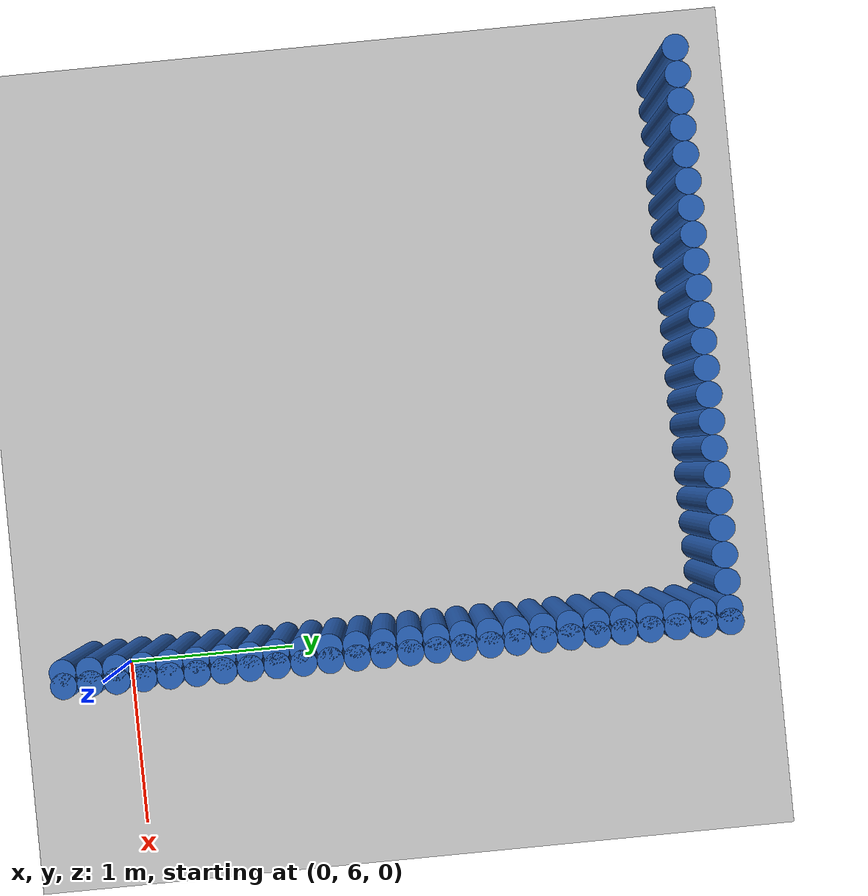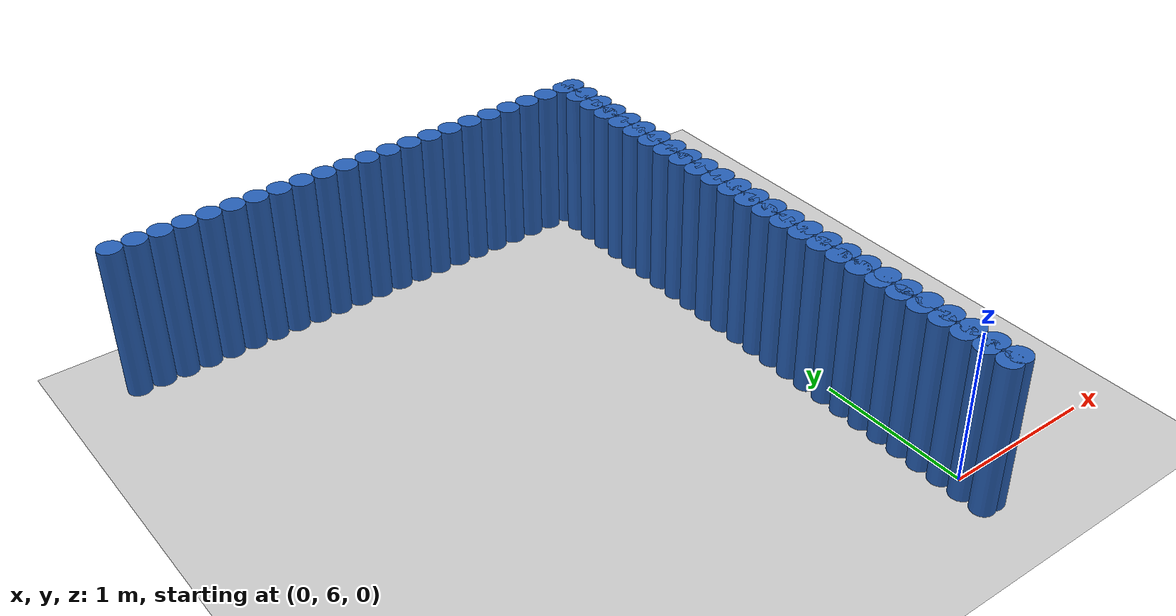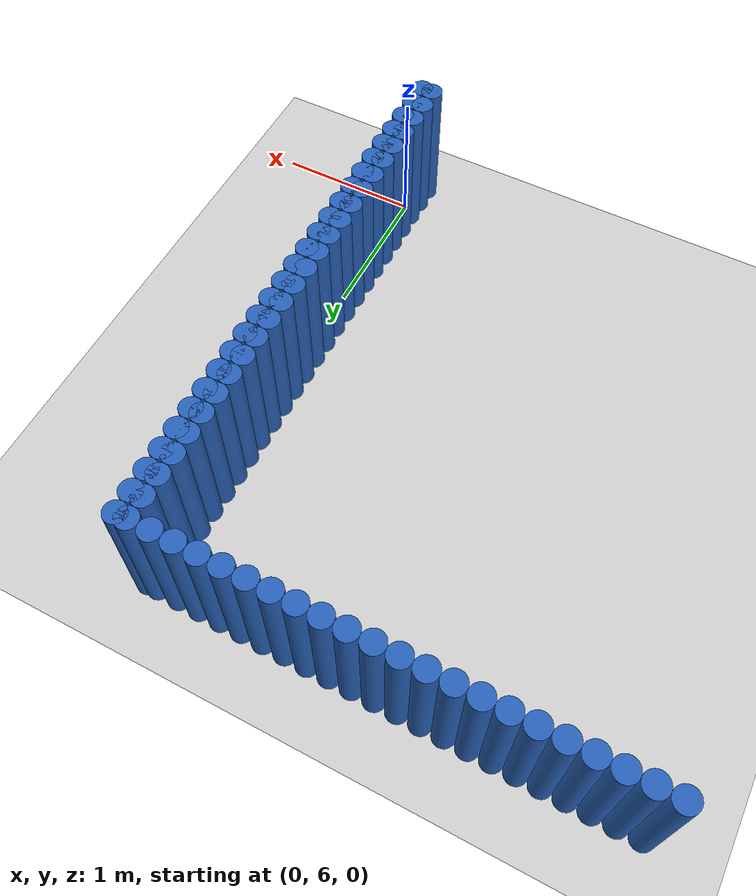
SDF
<sdf version="1.6">
 <world name="barn_world">
  <model name="ground_plane">
   <static>1</static>
   <link name="link">
    <collision name="collision">
     <geometry><plane><normal>0 0 1</normal><size>100 100</size></plane></geometry>
    </collision>
    <visual name="visual">
     <geometry><plane><normal>0 0 1</normal><size>100 100</size></plane></geometry>
     <material>
      <script><uri>file://media/materials/scripts/gazebo.material</uri><name>Gazebo/Grey</name></script>
     </material>
    </visual>
   </link>
  </model>
  <model name="unit_cylinder_179">
   <static>1</static>
   <pose>0.0000 5.7750 0.5 0 0 0</pose>
   <link name="link">
    <collision name="collision">
     <geometry><cylinder><radius>0.075</radius><length>1</length></cylinder></geometry>
    </collision>
    <visual name="visual">
     <geometry><cylinder><radius>0.075</radius><length>1</length></cylinder></geometry>
     <material><ambient>0.152 0.379 0.72 1</ambient><diffuse>0.152 0.379 0.72 1</diffuse></material>
    </visual>
   </link>
  </model>
  <model name="unit_cylinder_180">
   <static>1</static>
   <pose>0.0000 5.9250 0.5 0 0 0</pose>
   <link name="link">
    <collision name="collision">
     <geometry><cylinder><radius>0.075</radius><length>1</length></cylinder></geometry>
    </collision>
    <visual name="visual">
     <geometry><cylinder><radius>0.075</radius><length>1</length></cylinder></geometry>
     <material><ambient>0.152 0.379 0.72 1</ambient><diffuse>0.152 0.379 0.72 1</diffuse></material>
    </visual>
   </link>
  </model>
  <model name="unit_cylinder_181">
   <static>1</static>
   <pose>0.0000 6.0750 0.5 0 0 0</pose>
   <link name="link">
    <collision name="collision">
     <geometry><cylinder><radius>0.075</radius><length>1</length></cylinder></geometry>
    </collision>
    <visual name="visual">
     <geometry><cylinder><radius>0.075</radius><length>1</length></cylinder></geometry>
     <material><ambient>0.152 0.379 0.72 1</ambient><diffuse>0.152 0.379 0.72 1</diffuse></material>
    </visual>
   </link>
  </model>
  <model name="unit_cylinder_182">
   <static>1</static>
   <pose>0.0000 6.2250 0.5 0 0 0</pose>
   <link name="link">
    <collision name="collision">
     <geometry><cylinder><radius>0.075</radius><length>1</length></cylinder></geometry>
    </collision>
    <visual name="visual">
     <geometry><cylinder><radius>0.075</radius><length>1</length></cylinder></geometry>
     <material><ambient>0.152 0.379 0.72 1</ambient><diffuse>0.152 0.379 0.72 1</diffuse></material>
    </visual>
   </link>
  </model>
  <model name="unit_cylinder_183">
   <static>1</static>
   <pose>0.0000 6.3750 0.5 0 0 0</pose>
   <link name="link">
    <collision name="collision">
     <geometry><cylinder><radius>0.075</radius><length>1</length></cylinder></geometry>
    </collision>
    <visual name="visual">
     <geometry><cylinder><radius>0.075</radius><length>1</length></cylinder></geometry>
     <material><ambient>0.152 0.379 0.72 1</ambient><diffuse>0.152 0.379 0.72 1</diffuse></material>
    </visual>
   </link>
  </model>
  <model name="unit_cylinder_184">
   <static>1</static>
   <pose>0.0000 6.5250 0.5 0 0 0</pose>
   <link name="link">
    <collision name="collision">
     <geometry><cylinder><radius>0.075</radius><length>1</length></cylinder></geometry>
    </collision>
    <visual name="visual">
     <geometry><cylinder><radius>0.075</radius><length>1</length></cylinder></geometry>
     <material><ambient>0.152 0.379 0.72 1</ambient><diffuse>0.152 0.379 0.72 1</diffuse></material>
    </visual>
   </link>
  </model>
  <model name="unit_cylinder_185">
   <static>1</static>
   <pose>0.0000 6.6750 0.5 0 0 0</pose>
   <link name="link">
    <collision name="collision">
     <geometry><cylinder><radius>0.075</radius><length>1</length></cylinder></geometry>
    </collision>
    <visual name="visual">
     <geometry><cylinder><radius>0.075</radius><length>1</length></cylinder></geometry>
     <material><ambient>0.152 0.379 0.72 1</ambient><diffuse>0.152 0.379 0.72 1</diffuse></material>
    </visual>
   </link>
  </model>
  <model name="unit_cylinder_186">
   <static>1</static>
   <pose>0.0000 6.8250 0.5 0 0 0</pose>
   <link name="link">
    <collision name="collision">
     <geometry><cylinder><radius>0.075</radius><length>1</length></cylinder></geometry>
    </collision>
    <visual name="visual">
     <geometry><cylinder><radius>0.075</radius><length>1</length></cylinder></geometry>
     <material><ambient>0.152 0.379 0.72 1</ambient><diffuse>0.152 0.379 0.72 1</diffuse></material>
    </visual>
   </link>
  </model>
  <model name="unit_cylinder_187">
   <static>1</static>
   <pose>0.0000 6.9750 0.5 0 0 0</pose>
   <link name="link">
    <collision name="collision">
     <geometry><cylinder><radius>0.075</radius><length>1</length></cylinder></geometry>
    </collision>
    <visual name="visual">
     <geometry><cylinder><radius>0.075</radius><length>1</length></cylinder></geometry>
     <material><ambient>0.152 0.379 0.72 1</ambient><diffuse>0.152 0.379 0.72 1</diffuse></material>
    </visual>
   </link>
  </model>
  <model name="unit_cylinder_188">
   <static>1</static>
   <pose>0.0000 7.1250 0.5 0 0 0</pose>
   <link name="link">
    <collision name="collision">
     <geometry><cylinder><radius>0.075</radius><length>1</length></cylinder></geometry>
    </collision>
    <visual name="visual">
     <geometry><cylinder><radius>0.075</radius><length>1</length></cylinder></geometry>
     <material><ambient>0.152 0.379 0.72 1</ambient><diffuse>0.152 0.379 0.72 1</diffuse></material>
    </visual>
   </link>
  </model>
  <model name="unit_cylinder_189">
   <static>1</static>
   <pose>0.0000 7.2750 0.5 0 0 0</pose>
   <link name="link">
    <collision name="collision">
     <geometry><cylinder><radius>0.075</radius><length>1</length></cylinder></geometry>
    </collision>
    <visual name="visual">
     <geometry><cylinder><radius>0.075</radius><length>1</length></cylinder></geometry>
     <material><ambient>0.152 0.379 0.72 1</ambient><diffuse>0.152 0.379 0.72 1</diffuse></material>
    </visual>
   </link>
  </model>
  <model name="unit_cylinder_190">
   <static>1</static>
   <pose>0.0000 7.4250 0.5 0 0 0</pose>
   <link name="link">
    <collision name="collision">
     <geometry><cylinder><radius>0.075</radius><length>1</length></cylinder></geometry>
    </collision>
    <visual name="visual">
     <geometry><cylinder><radius>0.075</radius><length>1</length></cylinder></geometry>
     <material><ambient>0.152 0.379 0.72 1</ambient><diffuse>0.152 0.379 0.72 1</diffuse></material>
    </visual>
   </link>
  </model>
  <model name="unit_cylinder_191">
   <static>1</static>
   <pose>0.0000 7.5750 0.5 0 0 0</pose>
   <link name="link">
    <collision name="collision">
     <geometry><cylinder><radius>0.075</radius><length>1</length></cylinder></geometry>
    </collision>
    <visual name="visual">
     <geometry><cylinder><radius>0.075</radius><length>1</length></cylinder></geometry>
     <material><ambient>0.152 0.379 0.72 1</ambient><diffuse>0.152 0.379 0.72 1</diffuse></material>
    </visual>
   </link>
  </model>
  <model name="unit_cylinder_192">
   <static>1</static>
   <pose>0.0000 7.7250 0.5 0 0 0</pose>
   <link name="link">
    <collision name="collision">
     <geometry><cylinder><radius>0.075</radius><length>1</length></cylinder></geometry>
    </collision>
    <visual name="visual">
     <geometry><cylinder><radius>0.075</radius><length>1</length></cylinder></geometry>
     <material><ambient>0.152 0.379 0.72 1</ambient><diffuse>0.152 0.379 0.72 1</diffuse></material>
    </visual>
   </link>
  </model>
  <model name="unit_cylinder_193">
   <static>1</static>
   <pose>0.0000 7.8750 0.5 0 0 0</pose>
   <link name="link">
    <collision name="collision">
     <geometry><cylinder><radius>0.075</radius><length>1</length></cylinder></geometry>
    </collision>
    <visual name="visual">
     <geometry><cylinder><radius>0.075</radius><length>1</length></cylinder></geometry>
     <material><ambient>0.152 0.379 0.72 1</ambient><diffuse>0.152 0.379 0.72 1</diffuse></material>
    </visual>
   </link>
  </model>
  <model name="unit_cylinder_194">
   <static>1</static>
   <pose>0.0000 8.0250 0.5 0 0 0</pose>
   <link name="link">
    <collision name="collision">
     <geometry><cylinder><radius>0.075</radius><length>1</length></cylinder></geometry>
    </collision>
    <visual name="visual">
     <geometry><cylinder><radius>0.075</radius><length>1</length></cylinder></geometry>
     <material><ambient>0.152 0.379 0.72 1</ambient><diffuse>0.152 0.379 0.72 1</diffuse></material>
    </visual>
   </link>
  </model>
  <model name="unit_cylinder_195">
   <static>1</static>
   <pose>0.0000 8.1750 0.5 0 0 0</pose>
   <link name="link">
    <collision name="collision">
     <geometry><cylinder><radius>0.075</radius><length>1</length></cylinder></geometry>
    </collision>
    <visual name="visual">
     <geometry><cylinder><radius>0.075</radius><length>1</length></cylinder></geometry>
     <material><ambient>0.152 0.379 0.72 1</ambient><diffuse>0.152 0.379 0.72 1</diffuse></material>
    </visual>
   </link>
  </model>
  <model name="unit_cylinder_196">
   <static>1</static>
   <pose>0.0000 8.3250 0.5 0 0 0</pose>
   <link name="link">
    <collision name="collision">
     <geometry><cylinder><radius>0.075</radius><length>1</length></cylinder></geometry>
    </collision>
    <visual name="visual">
     <geometry><cylinder><radius>0.075</radius><length>1</length></cylinder></geometry>
     <material><ambient>0.152 0.379 0.72 1</ambient><diffuse>0.152 0.379 0.72 1</diffuse></material>
    </visual>
   </link>
  </model>
  <model name="unit_cylinder_197">
   <static>1</static>
   <pose>0.0000 8.4750 0.5 0 0 0</pose>
   <link name="link">
    <collision name="collision">
     <geometry><cylinder><radius>0.075</radius><length>1</length></cylinder></geometry>
    </collision>
    <visual name="visual">
     <geometry><cylinder><radius>0.075</radius><length>1</length></cylinder></geometry>
     <material><ambient>0.152 0.379 0.72 1</ambient><diffuse>0.152 0.379 0.72 1</diffuse></material>
    </visual>
   </link>
  </model>
  <model name="unit_cylinder_198">
   <static>1</static>
   <pose>0.0000 8.6250 0.5 0 0 0</pose>
   <link name="link">
    <collision name="collision">
     <geometry><cylinder><radius>0.075</radius><length>1</length></cylinder></geometry>
    </collision>
    <visual name="visual">
     <geometry><cylinder><radius>0.075</radius><length>1</length></cylinder></geometry>
     <material><ambient>0.152 0.379 0.72 1</ambient><diffuse>0.152 0.379 0.72 1</diffuse></material>
    </visual>
   </link>
  </model>
  <model name="unit_cylinder_199">
   <static>1</static>
   <pose>0.0000 8.7750 0.5 0 0 0</pose>
   <link name="link">
    <collision name="collision">
     <geometry><cylinder><radius>0.075</radius><length>1</length></cylinder></geometry>
    </collision>
    <visual name="visual">
     <geometry><cylinder><radius>0.075</radius><length>1</length></cylinder></geometry>
     <material><ambient>0.152 0.379 0.72 1</ambient><diffuse>0.152 0.379 0.72 1</diffuse></material>
    </visual>
   </link>
  </model>
  <model name="unit_cylinder_200">
   <static>1</static>
   <pose>0.0000 8.9250 0.5 0 0 0</pose>
   <link name="link">
    <collision name="collision">
     <geometry><cylinder><radius>0.075</radius><length>1</length></cylinder></geometry>
    </collision>
    <visual name="visual">
     <geometry><cylinder><radius>0.075</radius><length>1</length></cylinder></geometry>
     <material><ambient>0.152 0.379 0.72 1</ambient><diffuse>0.152 0.379 0.72 1</diffuse></material>
    </visual>
   </link>
  </model>
  <model name="unit_cylinder_201">
   <static>1</static>
   <pose>0.0000 9.0750 0.5 0 0 0</pose>
   <link name="link">
    <collision name="collision">
     <geometry><cylinder><radius>0.075</radius><length>1</length></cylinder></geometry>
    </collision>
    <visual name="visual">
     <geometry><cylinder><radius>0.075</radius><length>1</length></cylinder></geometry>
     <material><ambient>0.152 0.379 0.72 1</ambient><diffuse>0.152 0.379 0.72 1</diffuse></material>
    </visual>
   </link>
  </model>
  <model name="unit_cylinder_202">
   <static>1</static>
   <pose>0.0000 9.2250 0.5 0 0 0</pose>
   <link name="link">
    <collision name="collision">
     <geometry><cylinder><radius>0.075</radius><length>1</length></cylinder></geometry>
    </collision>
    <visual name="visual">
     <geometry><cylinder><radius>0.075</radius><length>1</length></cylinder></geometry>
     <material><ambient>0.152 0.379 0.72 1</ambient><diffuse>0.152 0.379 0.72 1</diffuse></material>
    </visual>
   </link>
  </model>
  <model name="unit_cylinder_203">
   <static>1</static>
   <pose>0.0000 9.3750 0.5 0 0 0</pose>
   <link name="link">
    <collision name="collision">
     <geometry><cylinder><radius>0.075</radius><length>1</length></cylinder></geometry>
    </collision>
    <visual name="visual">
     <geometry><cylinder><radius>0.075</radius><length>1</length></cylinder></geometry>
     <material><ambient>0.152 0.379 0.72 1</ambient><diffuse>0.152 0.379 0.72 1</diffuse></material>
    </visual>
   </link>
  </model>
  <model name="unit_cylinder_204">
   <static>1</static>
   <pose>0.0000 9.5250 0.5 0 0 0</pose>
   <link name="link">
    <collision name="collision">
     <geometry><cylinder><radius>0.075</radius><length>1</length></cylinder></geometry>
    </collision>
    <visual name="visual">
     <geometry><cylinder><radius>0.075</radius><length>1</length></cylinder></geometry>
     <material><ambient>0.152 0.379 0.72 1</ambient><diffuse>0.152 0.379 0.72 1</diffuse></material>
    </visual>
   </link>
  </model>
  <model name="unit_cylinder_205">
   <static>1</static>
   <pose>-0.0750 9.5250 0.5 0 0 0</pose>
   <link name="link">
    <collision name="collision">
     <geometry><cylinder><radius>0.075</radius><length>1</length></cylinder></geometry>
    </collision>
    <visual name="visual">
     <geometry><cylinder><radius>0.075</radius><length>1</length></cylinder></geometry>
     <material><ambient>0.152 0.379 0.72 1</ambient><diffuse>0.152 0.379 0.72 1</diffuse></material>
    </visual>
   </link>
  </model>
  <model name="unit_cylinder_206">
   <static>1</static>
   <pose>-0.2250 9.5250 0.5 0 0 0</pose>
   <link name="link">
    <collision name="collision">
     <geometry><cylinder><radius>0.075</radius><length>1</length></cylinder></geometry>
    </collision>
    <visual name="visual">
     <geometry><cylinder><radius>0.075</radius><length>1</length></cylinder></geometry>
     <material><ambient>0.152 0.379 0.72 1</ambient><diffuse>0.152 0.379 0.72 1</diffuse></material>
    </visual>
   </link>
  </model>
  <model name="unit_cylinder_207">
   <static>1</static>
   <pose>-0.3750 9.5250 0.5 0 0 0</pose>
   <link name="link">
    <collision name="collision">
     <geometry><cylinder><radius>0.075</radius><length>1</length></cylinder></geometry>
    </collision>
    <visual name="visual">
     <geometry><cylinder><radius>0.075</radius><length>1</length></cylinder></geometry>
     <material><ambient>0.152 0.379 0.72 1</ambient><diffuse>0.152 0.379 0.72 1</diffuse></material>
    </visual>
   </link>
  </model>
  <model name="unit_cylinder_208">
   <static>1</static>
   <pose>-0.5250 9.5250 0.5 0 0 0</pose>
   <link name="link">
    <collision name="collision">
     <geometry><cylinder><radius>0.075</radius><length>1</length></cylinder></geometry>
    </collision>
    <visual name="visual">
     <geometry><cylinder><radius>0.075</radius><length>1</length></cylinder></geometry>
     <material><ambient>0.152 0.379 0.72 1</ambient><diffuse>0.152 0.379 0.72 1</diffuse></material>
    </visual>
   </link>
  </model>
  <model name="unit_cylinder_209">
   <static>1</static>
   <pose>-0.6750 9.5250 0.5 0 0 0</pose>
   <link name="link">
    <collision name="collision">
     <geometry><cylinder><radius>0.075</radius><length>1</length></cylinder></geometry>
    </collision>
    <visual name="visual">
     <geometry><cylinder><radius>0.075</radius><length>1</length></cylinder></geometry>
     <material><ambient>0.152 0.379 0.72 1</ambient><diffuse>0.152 0.379 0.72 1</diffuse></material>
    </visual>
   </link>
  </model>
  <model name="unit_cylinder_210">
   <static>1</static>
   <pose>-0.8250 9.5250 0.5 0 0 0</pose>
   <link name="link">
    <collision name="collision">
     <geometry><cylinder><radius>0.075</radius><length>1</length></cylinder></geometry>
    </collision>
    <visual name="visual">
     <geometry><cylinder><radius>0.075</radius><length>1</length></cylinder></geometry>
     <material><ambient>0.152 0.379 0.72 1</ambient><diffuse>0.152 0.379 0.72 1</diffuse></material>
    </visual>
   </link>
  </model>
  <model name="unit_cylinder_211">
   <static>1</static>
   <pose>-0.9750 9.5250 0.5 0 0 0</pose>
   <link name="link">
    <collision name="collision">
     <geometry><cylinder><radius>0.075</radius><length>1</length></cylinder></geometry>
    </collision>
    <visual name="visual">
     <geometry><cylinder><radius>0.075</radius><length>1</length></cylinder></geometry>
     <material><ambient>0.152 0.379 0.72 1</ambient><diffuse>0.152 0.379 0.72 1</diffuse></material>
    </visual>
   </link>
  </model>
  <model name="unit_cylinder_212">
   <static>1</static>
   <pose>-1.1250 9.5250 0.5 0 0 0</pose>
   <link name="link">
    <collision name="collision">
     <geometry><cylinder><radius>0.075</radius><length>1</length></cylinder></geometry>
    </collision>
    <visual name="visual">
     <geometry><cylinder><radius>0.075</radius><length>1</length></cylinder></geometry>
     <material><ambient>0.152 0.379 0.72 1</ambient><diffuse>0.152 0.379 0.72 1</diffuse></material>
    </visual>
   </link>
  </model>
  <model name="unit_cylinder_213">
   <static>1</static>
   <pose>-1.2750 9.5250 0.5 0 0 0</pose>
   <link name="link">
    <collision name="collision">
     <geometry><cylinder><radius>0.075</radius><length>1</length></cylinder></geometry>
    </collision>
    <visual name="visual">
     <geometry><cylinder><radius>0.075</radius><length>1</length></cylinder></geometry>
     <material><ambient>0.152 0.379 0.72 1</ambient><diffuse>0.152 0.379 0.72 1</diffuse></material>
    </visual>
   </link>
  </model>
  <model name="unit_cylinder_214">
   <static>1</static>
   <pose>-1.4250 9.5250 0.5 0 0 0</pose>
   <link name="link">
    <collision name="collision">
     <geometry><cylinder><radius>0.075</radius><length>1</length></cylinder></geometry>
    </collision>
    <visual name="visual">
     <geometry><cylinder><radius>0.075</radius><length>1</length></cylinder></geometry>
     <material><ambient>0.152 0.379 0.72 1</ambient><diffuse>0.152 0.379 0.72 1</diffuse></material>
    </visual>
   </link>
  </model>
  <model name="unit_cylinder_215">
   <static>1</static>
   <pose>-1.5750 9.5250 0.5 0 0 0</pose>
   <link name="link">
    <collision name="collision">
     <geometry><cylinder><radius>0.075</radius><length>1</length></cylinder></geometry>
    </collision>
    <visual name="visual">
     <geometry><cylinder><radius>0.075</radius><length>1</length></cylinder></geometry>
     <material><ambient>0.152 0.379 0.72 1</ambient><diffuse>0.152 0.379 0.72 1</diffuse></material>
    </visual>
   </link>
  </model>
  <model name="unit_cylinder_216">
   <static>1</static>
   <pose>-1.7250 9.5250 0.5 0 0 0</pose>
   <link name="link">
    <collision name="collision">
     <geometry><cylinder><radius>0.075</radius><length>1</length></cylinder></geometry>
    </collision>
    <visual name="visual">
     <geometry><cylinder><radius>0.075</radius><length>1</length></cylinder></geometry>
     <material><ambient>0.152 0.379 0.72 1</ambient><diffuse>0.152 0.379 0.72 1</diffuse></material>
    </visual>
   </link>
  </model>
  <model name="unit_cylinder_217">
   <static>1</static>
   <pose>-1.8750 9.5250 0.5 0 0 0</pose>
   <link name="link">
    <collision name="collision">
     <geometry><cylinder><radius>0.075</radius><length>1</length></cylinder></geometry>
    </collision>
    <visual name="visual">
     <geometry><cylinder><radius>0.075</radius><length>1</length></cylinder></geometry>
     <material><ambient>0.152 0.379 0.72 1</ambient><diffuse>0.152 0.379 0.72 1</diffuse></material>
    </visual>
   </link>
  </model>
  <model name="unit_cylinder_218">
   <static>1</static>
   <pose>-2.0250 9.5250 0.5 0 0 0</pose>
   <link name="link">
    <collision name="collision">
     <geometry><cylinder><radius>0.075</radius><length>1</length></cylinder></geometry>
    </collision>
    <visual name="visual">
     <geometry><cylinder><radius>0.075</radius><length>1</length></cylinder></geometry>
     <material><ambient>0.152 0.379 0.72 1</ambient><diffuse>0.152 0.379 0.72 1</diffuse></material>
    </visual>
   </link>
  </model>
  <model name="unit_cylinder_219">
   <static>1</static>
   <pose>-2.1750 9.5250 0.5 0 0 0</pose>
   <link name="link">
    <collision name="collision">
     <geometry><cylinder><radius>0.075</radius><length>1</length></cylinder></geometry>
    </collision>
    <visual name="visual">
     <geometry><cylinder><radius>0.075</radius><length>1</length></cylinder></geometry>
     <material><ambient>0.152 0.379 0.72 1</ambient><diffuse>0.152 0.379 0.72 1</diffuse></material>
    </visual>
   </link>
  </model>
  <model name="unit_cylinder_220">
   <static>1</static>
   <pose>-2.3250 9.5250 0.5 0 0 0</pose>
   <link name="link">
    <collision name="collision">
     <geometry><cylinder><radius>0.075</radius><length>1</length></cylinder></geometry>
    </collision>
    <visual name="visual">
     <geometry><cylinder><radius>0.075</radius><length>1</length></cylinder></geometry>
     <material><ambient>0.152 0.379 0.72 1</ambient><diffuse>0.152 0.379 0.72 1</diffuse></material>
    </visual>
   </link>
  </model>
  <model name="unit_cylinder_221">
   <static>1</static>
   <pose>-2.4750 9.5250 0.5 0 0 0</pose>
   <link name="link">
    <collision name="collision">
     <geometry><cylinder><radius>0.075</radius><length>1</length></cylinder></geometry>
    </collision>
    <visual name="visual">
     <geometry><cylinder><radius>0.075</radius><length>1</length></cylinder></geometry>
     <material><ambient>0.152 0.379 0.72 1</ambient><diffuse>0.152 0.379 0.72 1</diffuse></material>
    </visual>
   </link>
  </model>
  <model name="unit_cylinder_222">
   <static>1</static>
   <pose>-2.6250 9.5250 0.5 0 0 0</pose>
   <link name="link">
    <collision name="collision">
     <geometry><cylinder><radius>0.075</radius><length>1</length></cylinder></geometry>
    </collision>
    <visual name="visual">
     <geometry><cylinder><radius>0.075</radius><length>1</length></cylinder></geometry>
     <material><ambient>0.152 0.379 0.72 1</ambient><diffuse>0.152 0.379 0.72 1</diffuse></material>
    </visual>
   </link>
  </model>
  <model name="unit_cylinder_223">
   <static>1</static>
   <pose>-2.7750 9.5250 0.5 0 0 0</pose>
   <link name="link">
    <collision name="collision">
     <geometry><cylinder><radius>0.075</radius><length>1</length></cylinder></geometry>
    </collision>
    <visual name="visual">
     <geometry><cylinder><radius>0.075</radius><length>1</length></cylinder></geometry>
     <material><ambient>0.152 0.379 0.72 1</ambient><diffuse>0.152 0.379 0.72 1</diffuse></material>
    </visual>
   </link>
  </model>
  <model name="unit_cylinder_224">
   <static>1</static>
   <pose>-2.9250 9.5250 0.5 0 0 0</pose>
   <link name="link">
    <collision name="collision">
     <geometry><cylinder><radius>0.075</radius><length>1</length></cylinder></geometry>
    </collision>
    <visual name="visual">
     <geometry><cylinder><radius>0.075</radius><length>1</length></cylinder></geometry>
     <material><ambient>0.152 0.379 0.72 1</ambient><diffuse>0.152 0.379 0.72 1</diffuse></material>
    </visual>
   </link>
  </model>
  <model name="unit_cylinder_225">
   <static>1</static>
   <pose>-3.0750 9.5250 0.5 0 0 0</pose>
   <link name="link">
    <collision name="collision">
     <geometry><cylinder><radius>0.075</radius><length>1</length></cylinder></geometry>
    </collision>
    <visual name="visual">
     <geometry><cylinder><radius>0.075</radius><length>1</length></cylinder></geometry>
     <material><ambient>0.152 0.379 0.72 1</ambient><diffuse>0.152 0.379 0.72 1</diffuse></material>
    </visual>
   </link>
  </model>
  <model name="unit_cylinder_226">
   <static>1</static>
   <pose>-3.2250 9.5250 0.5 0 0 0</pose>
   <link name="link">
    <collision name="collision">
     <geometry><cylinder><radius>0.075</radius><length>1</length></cylinder></geometry>
    </collision>
    <visual name="visual">
     <geometry><cylinder><radius>0.075</radius><length>1</length></cylinder></geometry>
     <material><ambient>0.152 0.379 0.72 1</ambient><diffuse>0.152 0.379 0.72 1</diffuse></material>
    </visual>
   </link>
  </model>
  <model name="unit_cylinder_243">
   <static>1</static>
   <pose>-0.0750 5.7750 0.5 0 0 0</pose>
   <link name="link">
    <collision name="collision">
     <geometry><cylinder><radius>0.075</radius><length>1</length></cylinder></geometry>
    </collision>
    <visual name="visual">
     <geometry><cylinder><radius>0.075</radius><length>1</length></cylinder></geometry>
     <material><ambient>0.152 0.379 0.72 1</ambient><diffuse>0.152 0.379 0.72 1</diffuse></material>
    </visual>
   </link>
  </model>
  <model name="unit_cylinder_245">
   <static>1</static>
   <pose>-0.0750 5.9250 0.5 0 0 0</pose>
   <link name="link">
    <collision name="collision">
     <geometry><cylinder><radius>0.075</radius><length>1</length></cylinder></geometry>
    </collision>
    <visual name="visual">
     <geometry><cylinder><radius>0.075</radius><length>1</length></cylinder></geometry>
     <material><ambient>0.152 0.379 0.72 1</ambient><diffuse>0.152 0.379 0.72 1</diffuse></material>
    </visual>
   </link>
  </model>
  <model name="unit_cylinder_247">
   <static>1</static>
   <pose>-0.0750 6.0750 0.5 0 0 0</pose>
   <link name="link">
    <collision name="collision">
     <geometry><cylinder><radius>0.075</radius><length>1</length></cylinder></geometry>
    </collision>
    <visual name="visual">
     <geometry><cylinder><radius>0.075</radius><length>1</length></cylinder></geometry>
     <material><ambient>0.152 0.379 0.72 1</ambient><diffuse>0.152 0.379 0.72 1</diffuse></material>
    </visual>
   </link>
  </model>
  <model name="unit_cylinder_249">
   <static>1</static>
   <pose>-0.0750 6.2250 0.5 0 0 0</pose>
   <link name="link">
    <collision name="collision">
     <geometry><cylinder><radius>0.075</radius><length>1</length></cylinder></geometry>
    </collision>
    <visual name="visual">
     <geometry><cylinder><radius>0.075</radius><length>1</length></cylinder></geometry>
     <material><ambient>0.152 0.379 0.72 1</ambient><diffuse>0.152 0.379 0.72 1</diffuse></material>
    </visual>
   </link>
  </model>
  <model name="unit_cylinder_251">
   <static>1</static>
   <pose>-0.0750 6.3750 0.5 0 0 0</pose>
   <link name="link">
    <collision name="collision">
     <geometry><cylinder><radius>0.075</radius><length>1</length></cylinder></geometry>
    </collision>
    <visual name="visual">
     <geometry><cylinder><radius>0.075</radius><length>1</length></cylinder></geometry>
     <material><ambient>0.152 0.379 0.72 1</ambient><diffuse>0.152 0.379 0.72 1</diffuse></material>
    </visual>
   </link>
  </model>
  <model name="unit_cylinder_253">
   <static>1</static>
   <pose>-0.0750 6.5250 0.5 0 0 0</pose>
   <link name="link">
    <collision name="collision">
     <geometry><cylinder><radius>0.075</radius><length>1</length></cylinder></geometry>
    </collision>
    <visual name="visual">
     <geometry><cylinder><radius>0.075</radius><length>1</length></cylinder></geometry>
     <material><ambient>0.152 0.379 0.72 1</ambient><diffuse>0.152 0.379 0.72 1</diffuse></material>
    </visual>
   </link>
  </model>
  <model name="unit_cylinder_255">
   <static>1</static>
   <pose>-0.0750 6.6750 0.5 0 0 0</pose>
   <link name="link">
    <collision name="collision">
     <geometry><cylinder><radius>0.075</radius><length>1</length></cylinder></geometry>
    </collision>
    <visual name="visual">
     <geometry><cylinder><radius>0.075</radius><length>1</length></cylinder></geometry>
     <material><ambient>0.152 0.379 0.72 1</ambient><diffuse>0.152 0.379 0.72 1</diffuse></material>
    </visual>
   </link>
  </model>
  <model name="unit_cylinder_257">
   <static>1</static>
   <pose>-0.0750 6.8250 0.5 0 0 0</pose>
   <link name="link">
    <collision name="collision">
     <geometry><cylinder><radius>0.075</radius><length>1</length></cylinder></geometry>
    </collision>
    <visual name="visual">
     <geometry><cylinder><radius>0.075</radius><length>1</length></cylinder></geometry>
     <material><ambient>0.152 0.379 0.72 1</ambient><diffuse>0.152 0.379 0.72 1</diffuse></material>
    </visual>
   </link>
  </model>
  <model name="unit_cylinder_259">
   <static>1</static>
   <pose>-0.0750 6.9750 0.5 0 0 0</pose>
   <link name="link">
    <collision name="collision">
     <geometry><cylinder><radius>0.075</radius><length>1</length></cylinder></geometry>
    </collision>
    <visual name="visual">
     <geometry><cylinder><radius>0.075</radius><length>1</length></cylinder></geometry>
     <material><ambient>0.152 0.379 0.72 1</ambient><diffuse>0.152 0.379 0.72 1</diffuse></material>
    </visual>
   </link>
  </model>
  <model name="unit_cylinder_261">
   <static>1</static>
   <pose>-0.0750 7.1250 0.5 0 0 0</pose>
   <link name="link">
    <collision name="collision">
     <geometry><cylinder><radius>0.075</radius><length>1</length></cylinder></geometry>
    </collision>
    <visual name="visual">
     <geometry><cylinder><radius>0.075</radius><length>1</length></cylinder></geometry>
     <material><ambient>0.152 0.379 0.72 1</ambient><diffuse>0.152 0.379 0.72 1</diffuse></material>
    </visual>
   </link>
  </model>
  <model name="unit_cylinder_263">
   <static>1</static>
   <pose>-0.0750 7.2750 0.5 0 0 0</pose>
   <link name="link">
    <collision name="collision">
     <geometry><cylinder><radius>0.075</radius><length>1</length></cylinder></geometry>
    </collision>
    <visual name="visual">
     <geometry><cylinder><radius>0.075</radius><length>1</length></cylinder></geometry>
     <material><ambient>0.152 0.379 0.72 1</ambient><diffuse>0.152 0.379 0.72 1</diffuse></material>
    </visual>
   </link>
  </model>
  <model name="unit_cylinder_265">
   <static>1</static>
   <pose>-0.0750 7.4250 0.5 0 0 0</pose>
   <link name="link">
    <collision name="collision">
     <geometry><cylinder><radius>0.075</radius><length>1</length></cylinder></geometry>
    </collision>
    <visual name="visual">
     <geometry><cylinder><radius>0.075</radius><length>1</length></cylinder></geometry>
     <material><ambient>0.152 0.379 0.72 1</ambient><diffuse>0.152 0.379 0.72 1</diffuse></material>
    </visual>
   </link>
  </model>
  <model name="unit_cylinder_267">
   <static>1</static>
   <pose>-0.0750 7.5750 0.5 0 0 0</pose>
   <link name="link">
    <collision name="collision">
     <geometry><cylinder><radius>0.075</radius><length>1</length></cylinder></geometry>
    </collision>
    <visual name="visual">
     <geometry><cylinder><radius>0.075</radius><length>1</length></cylinder></geometry>
     <material><ambient>0.152 0.379 0.72 1</ambient><diffuse>0.152 0.379 0.72 1</diffuse></material>
    </visual>
   </link>
  </model>
  <model name="unit_cylinder_269">
   <static>1</static>
   <pose>-0.0750 7.7250 0.5 0 0 0</pose>
   <link name="link">
    <collision name="collision">
     <geometry><cylinder><radius>0.075</radius><length>1</length></cylinder></geometry>
    </collision>
    <visual name="visual">
     <geometry><cylinder><radius>0.075</radius><length>1</length></cylinder></geometry>
     <material><ambient>0.152 0.379 0.72 1</ambient><diffuse>0.152 0.379 0.72 1</diffuse></material>
    </visual>
   </link>
  </model>
  <model name="unit_cylinder_271">
   <static>1</static>
   <pose>-0.0750 7.8750 0.5 0 0 0</pose>
   <link name="link">
    <collision name="collision">
     <geometry><cylinder><radius>0.075</radius><length>1</length></cylinder></geometry>
    </collision>
    <visual name="visual">
     <geometry><cylinder><radius>0.075</radius><length>1</length></cylinder></geometry>
     <material><ambient>0.152 0.379 0.72 1</ambient><diffuse>0.152 0.379 0.72 1</diffuse></material>
    </visual>
   </link>
  </model>
  <model name="unit_cylinder_273">
   <static>1</static>
   <pose>-0.0750 8.0250 0.5 0 0 0</pose>
   <link name="link">
    <collision name="collision">
     <geometry><cylinder><radius>0.075</radius><length>1</length></cylinder></geometry>
    </collision>
    <visual name="visual">
     <geometry><cylinder><radius>0.075</radius><length>1</length></cylinder></geometry>
     <material><ambient>0.152 0.379 0.72 1</ambient><diffuse>0.152 0.379 0.72 1</diffuse></material>
    </visual>
   </link>
  </model>
  <model name="unit_cylinder_275">
   <static>1</static>
   <pose>-0.0750 8.1750 0.5 0 0 0</pose>
   <link name="link">
    <collision name="collision">
     <geometry><cylinder><radius>0.075</radius><length>1</length></cylinder></geometry>
    </collision>
    <visual name="visual">
     <geometry><cylinder><radius>0.075</radius><length>1</length></cylinder></geometry>
     <material><ambient>0.152 0.379 0.72 1</ambient><diffuse>0.152 0.379 0.72 1</diffuse></material>
    </visual>
   </link>
  </model>
  <model name="unit_cylinder_277">
   <static>1</static>
   <pose>-0.0750 8.3250 0.5 0 0 0</pose>
   <link name="link">
    <collision name="collision">
     <geometry><cylinder><radius>0.075</radius><length>1</length></cylinder></geometry>
    </collision>
    <visual name="visual">
     <geometry><cylinder><radius>0.075</radius><length>1</length></cylinder></geometry>
     <material><ambient>0.152 0.379 0.72 1</ambient><diffuse>0.152 0.379 0.72 1</diffuse></material>
    </visual>
   </link>
  </model>
  <model name="unit_cylinder_279">
   <static>1</static>
   <pose>-0.0750 8.4750 0.5 0 0 0</pose>
   <link name="link">
    <collision name="collision">
     <geometry><cylinder><radius>0.075</radius><length>1</length></cylinder></geometry>
    </collision>
    <visual name="visual">
     <geometry><cylinder><radius>0.075</radius><length>1</length></cylinder></geometry>
     <material><ambient>0.152 0.379 0.72 1</ambient><diffuse>0.152 0.379 0.72 1</diffuse></material>
    </visual>
   </link>
  </model>
  <model name="unit_cylinder_281">
   <static>1</static>
   <pose>-0.0750 8.6250 0.5 0 0 0</pose>
   <link name="link">
    <collision name="collision">
     <geometry><cylinder><radius>0.075</radius><length>1</length></cylinder></geometry>
    </collision>
    <visual name="visual">
     <geometry><cylinder><radius>0.075</radius><length>1</length></cylinder></geometry>
     <material><ambient>0.152 0.379 0.72 1</ambient><diffuse>0.152 0.379 0.72 1</diffuse></material>
    </visual>
   </link>
  </model>
  <model name="unit_cylinder_283">
   <static>1</static>
   <pose>-0.0750 8.7750 0.5 0 0 0</pose>
   <link name="link">
    <collision name="collision">
     <geometry><cylinder><radius>0.075</radius><length>1</length></cylinder></geometry>
    </collision>
    <visual name="visual">
     <geometry><cylinder><radius>0.075</radius><length>1</length></cylinder></geometry>
     <material><ambient>0.152 0.379 0.72 1</ambient><diffuse>0.152 0.379 0.72 1</diffuse></material>
    </visual>
   </link>
  </model>
  <model name="unit_cylinder_285">
   <static>1</static>
   <pose>-0.0750 8.9250 0.5 0 0 0</pose>
   <link name="link">
    <collision name="collision">
     <geometry><cylinder><radius>0.075</radius><length>1</length></cylinder></geometry>
    </collision>
    <visual name="visual">
     <geometry><cylinder><radius>0.075</radius><length>1</length></cylinder></geometry>
     <material><ambient>0.152 0.379 0.72 1</ambient><diffuse>0.152 0.379 0.72 1</diffuse></material>
    </visual>
   </link>
  </model>
  <model name="unit_cylinder_287">
   <static>1</static>
   <pose>-0.0750 9.0750 0.5 0 0 0</pose>
   <link name="link">
    <collision name="collision">
     <geometry><cylinder><radius>0.075</radius><length>1</length></cylinder></geometry>
    </collision>
    <visual name="visual">
     <geometry><cylinder><radius>0.075</radius><length>1</length></cylinder></geometry>
     <material><ambient>0.152 0.379 0.72 1</ambient><diffuse>0.152 0.379 0.72 1</diffuse></material>
    </visual>
   </link>
  </model>
  <model name="unit_cylinder_289">
   <static>1</static>
   <pose>-0.0750 9.2250 0.5 0 0 0</pose>
   <link name="link">
    <collision name="collision">
     <geometry><cylinder><radius>0.075</radius><length>1</length></cylinder></geometry>
    </collision>
    <visual name="visual">
     <geometry><cylinder><radius>0.075</radius><length>1</length></cylinder></geometry>
     <material><ambient>0.152 0.379 0.72 1</ambient><diffuse>0.152 0.379 0.72 1</diffuse></material>
    </visual>
   </link>
  </model>
  <model name="unit_cylinder_291">
   <static>1</static>
   <pose>-0.0750 9.3750 0.5 0 0 0</pose>
   <link name="link">
    <collision name="collision">
     <geometry><cylinder><radius>0.075</radius><length>1</length></cylinder></geometry>
    </collision>
    <visual name="visual">
     <geometry><cylinder><radius>0.075</radius><length>1</length></cylinder></geometry>
     <material><ambient>0.152 0.379 0.72 1</ambient><diffuse>0.152 0.379 0.72 1</diffuse></material>
    </visual>
   </link>
  </model>
 </world>
</sdf>
